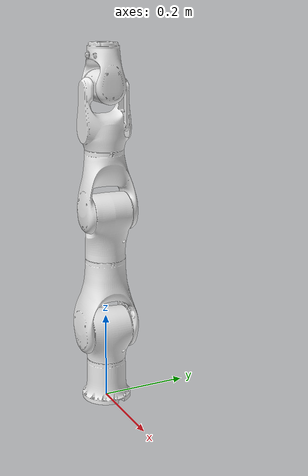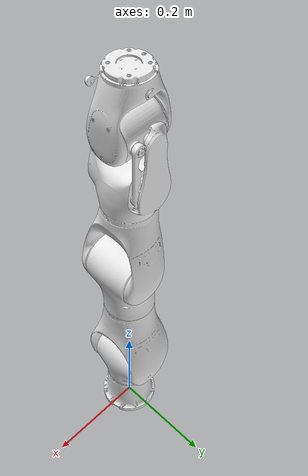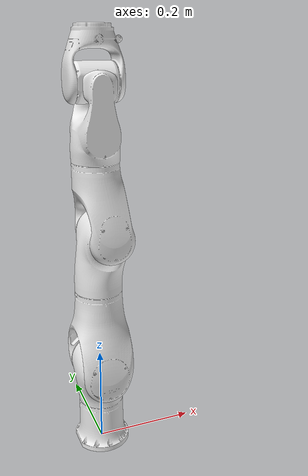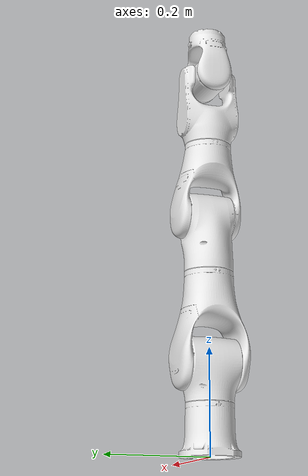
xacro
<?xml version='1.0' encoding='UTF-8'?>
<!-- xMate AR3L collaborative ARC 7-axis (3 kg). Source: 仓三 AR3-3_07L-W4C5C5_description -->
<!-- Joints renamed to joint1..joint7 for ros2_control / MoveIt. -->
<robot xmlns:xacro="http://www.ros.org/wiki/xacro" name="AR3-3_07L-W4C5C5">

  <xacro:include filename="$(find rokae_description)/urdf/materials.xacro"/>

  <!-- Used for fixing robot to Gazebo 'base_link' -->
  <link name="world"/>
  <joint name="fixed" type="fixed">
    <parent link="world"/>
    <child link="AR3-3_07L-W4C5C5_base"/>
  </joint>
  <!--base-->
  <link name="AR3-3_07L-W4C5C5_base">
    <visual>
      <geometry>
        <mesh filename="package://rokae_description/meshes/AR3-3_07L-W4C5C5/visual/AR3-3_07L-W4C5C5_base.stl" scale="0.001 0.001 0.001"/>
      </geometry>
      <origin rpy="0 0 0" xyz="0.0 0.0 0.0"/>
      <material name="white"/>
    </visual>
    <collision>
      <geometry>
        <mesh filename="package://rokae_description/meshes/AR3-3_07L-W4C5C5/collision/AR3-3_07L-W4C5C5_base.stl" scale="0.001 0.001 0.001"/>
      </geometry>
      <origin rpy="0 0 0" xyz="0.0 0.0 0.0"/>
    </collision>
  </link>
  <joint name="joint1" type="revolute">
    <parent link="AR3-3_07L-W4C5C5_base"/>
    <child link="AR3-3_07L-W4C5C5_link1"/>
    <limit effort="66" lower="-3.1067" upper="3.1067" velocity="3.05432619"/>
    <axis xyz="0 0 1"/>
    <origin rpy="0 0 0" xyz="0.0 0.0 0.0"/>
  </joint>
  <transmission name="tran1">
    <type>transmission_interface/SimpleTransmission</type>
    <joint name="joint1">
      <hardwareInterface>EffortJointInterface</hardwareInterface>
    </joint>
    <actuator name="motor1">
      <hardwareInterface>EffortJointInterface</hardwareInterface>
      <mechanicalReduction>1</mechanicalReduction>
    </actuator>
  </transmission>
  <!--link 1-->
  <link name="AR3-3_07L-W4C5C5_link1">
    <visual>
      <geometry>
        <mesh filename="package://rokae_description/meshes/AR3-3_07L-W4C5C5/visual/AR3-3_07L-W4C5C5_link1.stl" scale="0.001 0.001 0.001"/>
      </geometry>
      <origin rpy="0 0 0" xyz="0 0 0"/>
      <material name="white"/>
    </visual>
    <inertial>
      <mass value="1.777000"/>
      <inertia ixx="0.00308384" ixy="-0.00000199" ixz="0.00000297" iyy="0.00259051" iyz="-0.00002823" izz="0.00249381"/>
      <origin rpy="0 0 0" xyz="-0.000174 -0.001385 0.161266"/>
    </inertial>
    <collision>
      <geometry>
        <mesh filename="package://rokae_description/meshes/AR3-3_07L-W4C5C5/collision/AR3-3_07L-W4C5C5_link1.stl" scale="0.001 0.001 0.001"/>
      </geometry>
      <origin rpy="0 0 0" xyz="0 0 0"/>
    </collision>
  </link>
  <joint name="joint2" type="revolute">
    <parent link="AR3-3_07L-W4C5C5_link1"/>
    <child link="AR3-3_07L-W4C5C5_link2"/>
    <limit effort="66" lower="-2.0944" upper="2.0944" velocity="3.05432619"/>
    <axis xyz="0 1 0"/>
    <origin rpy="0 0 0" xyz="0.0 0.0 0.17"/>
  </joint>
  <transmission name="tran2">
    <type>transmission_interface/SimpleTransmission</type>
    <joint name="joint2">
      <hardwareInterface>EffortJointInterface</hardwareInterface>
    </joint>
    <actuator name="motor2">
      <hardwareInterface>EffortJointInterface</hardwareInterface>
      <mechanicalReduction>1</mechanicalReduction>
    </actuator>
  </transmission>
<!--link 2-->
  <link name="AR3-3_07L-W4C5C5_link2">
    <visual>
      <geometry>
        <mesh filename="package://rokae_description/meshes/AR3-3_07L-W4C5C5/visual/AR3-3_07L-W4C5C5_link2.stl" scale="0.001 0.001 0.001"/>
      </geometry>
      <origin rpy="0 0 0" xyz="0 0 0.0"/>
      <material name="white"/>
    </visual>
    <inertial>
      <mass value="2.154000"/>
      <inertia ixx="0.00840938" ixy="-0.00000483" ixz="0.00000090" iyy="0.00721743" iyz="0.00046270" izz="0.00393417"/>
      <origin rpy="0 0 0" xyz="5.5e-05 -0.001608 0.100675"/>
    </inertial>
    <collision>
      <geometry>
        <mesh filename="package://rokae_description/meshes/AR3-3_07L-W4C5C5/collision/AR3-3_07L-W4C5C5_link2.stl" scale="0.001 0.001 0.001"/>
      </geometry>
      <origin rpy="0 0 0" xyz="0 0 0.0"/>
    </collision>
  </link>
  <joint name="joint3" type="revolute">
    <parent link="AR3-3_07L-W4C5C5_link2"/>
    <child link="AR3-3_07L-W4C5C5_link3"/>
    <limit effort="36" lower="-3.1067" upper="3.1067" velocity="4.71238898"/>
    <axis xyz="0 0 1"/>
    <origin rpy="0 0 0" xyz="0.0 0.0 0.281"/>
  </joint>
  <transmission name="tran3">
    <type>transmission_interface/SimpleTransmission</type>
    <joint name="joint3">
      <hardwareInterface>EffortJointInterface</hardwareInterface>
    </joint>
    <actuator name="motor3">
      <hardwareInterface>EffortJointInterface</hardwareInterface>
      <mechanicalReduction>1</mechanicalReduction>
    </actuator>
  </transmission>
<!--link 3-->
  <link name="AR3-3_07L-W4C5C5_link3">
    <visual>
      <geometry>
        <mesh filename="package://rokae_description/meshes/AR3-3_07L-W4C5C5/visual/AR3-3_07L-W4C5C5_link3.stl" scale="0.001 0.001 0.001"/>
      </geometry>
      <origin rpy="0 0 0" xyz="0 0 0"/>
      <material name="white"/>
    </visual>
    <inertial>
      <mass value="1.532000"/>
      <inertia ixx="0.00337301" ixy="-0.00001165" ixz="0.00028785" iyy="0.00322437" iyz="-0.00005221" izz="0.00192214"/>
      <origin rpy="0 0 0" xyz="0.011846 -0.003842 -0.016119"/>
    </inertial>
    <collision>
      <geometry>
        <mesh filename="package://rokae_description/meshes/AR3-3_07L-W4C5C5/collision/AR3-3_07L-W4C5C5_link3.stl" scale="0.001 0.001 0.001"/>
      </geometry>
      <origin rpy="0 0 0" xyz="0 0 0"/>
    </collision>
  </link>
  <joint name="joint4" type="revolute">
    <parent link="AR3-3_07L-W4C5C5_link3"/>
    <child link="AR3-3_07L-W4C5C5_link4"/>
    <limit effort="36" lower="-1.0472" upper="2.5307" velocity="4.71238898"/>
    <!--     lower="-1.0472" upper="2.5307" -->
    <axis xyz="0 1 0"/>
    <origin rpy="0 0 0" xyz="0.015 0.0 0.0"/>
  </joint>
  <transmission name="tran4">
    <type>transmission_interface/SimpleTransmission</type>
    <joint name="joint4">
      <hardwareInterface>EffortJointInterface</hardwareInterface>
    </joint>
    <actuator name="motor4">
      <hardwareInterface>EffortJointInterface</hardwareInterface>
      <mechanicalReduction>1</mechanicalReduction>
    </actuator>
  </transmission>
<!--link 4-->
  <link name="AR3-3_07L-W4C5C5_link4">
    <visual>
      <geometry>
        <mesh filename="package://rokae_description/meshes/AR3-3_07L-W4C5C5/visual/AR3-3_07L-W4C5C5_link4.stl" scale="0.001 0.001 0.001"/>
      </geometry>
      <origin rpy="0 0 0" xyz="0.0 0.0 0.0"/>
      <material name="white"/>
    </visual>
    <inertial>
      <mass value="1.161000"/>
      <inertia ixx="0.00360136" ixy="-0.00001046" ixz="-0.00021493" iyy="0.00278613" iyz="0.00011939" izz="0.00188352"/>
      <origin rpy="0 0 0" xyz="-0.010709 -0.0008209999999999999 0.080928"/>
    </inertial>
    <collision>
      <geometry>
        <mesh filename="package://rokae_description/meshes/AR3-3_07L-W4C5C5/collision/AR3-3_07L-W4C5C5_link4.stl" scale="0.001 0.001 0.001"/>
      </geometry>
      <origin rpy="0 0 0" xyz="0.0 0.0 0.0"/>
    </collision>
  </link>
  <joint name="joint5" type="revolute">
    <parent link="AR3-3_07L-W4C5C5_link4"/>
    <child link="AR3-3_07L-W4C5C5_link5"/>
    <limit effort="11" lower="-3.1067" upper="3.1067" velocity="4.18879020"/>
    <axis xyz="0 0 1"/>
    <origin rpy="0 0 0" xyz="-0.015 0.0 0.276"/>
  </joint>
  <transmission name="tran5">
    <type>transmission_interface/SimpleTransmission</type>
    <joint name="joint5">
      <hardwareInterface>EffortJointInterface</hardwareInterface>
    </joint>
    <actuator name="motor5">
      <hardwareInterface>EffortJointInterface</hardwareInterface>
      <mechanicalReduction>1</mechanicalReduction>
    </actuator>
  </transmission>
<!--link 5-->
  <link name="AR3-3_07L-W4C5C5_link5">
    <visual>
      <geometry>
        <mesh filename="package://rokae_description/meshes/AR3-3_07L-W4C5C5/visual/AR3-3_07L-W4C5C5_link5.stl" scale="0.001 0.001 0.001"/>
      </geometry>
      <origin rpy="0 0 0" xyz="0 0 0"/>
      <material name="white"/>
    </visual>
    <inertial>
      <mass value="1.098000"/>
      <inertia ixx="0.00221583" ixy="0.00003501" ixz="0.00003798" iyy="0.00187879" iyz="0.00008344" izz="0.00126064"/>
      <origin rpy="0 0 0" xyz="0.000874 0.0062629999999999995 -0.082189"/>
    </inertial>
    <collision>
      <geometry>
        <mesh filename="package://rokae_description/meshes/AR3-3_07L-W4C5C5/collision/AR3-3_07L-W4C5C5_link5.stl" scale="0.001 0.001 0.001"/>
      </geometry>
      <origin rpy="0 0 0" xyz="0 0 0"/>
    </collision>
  </link>
  <joint name="joint6" type="revolute">
    <parent link="AR3-3_07L-W4C5C5_link5"/>
    <child link="AR3-3_07L-W4C5C5_link6"/>
    <limit effort="11" lower="-1.0472" upper="1.0472" velocity="4.18879020"/>
    <axis xyz="0 1 0"/>
    <origin rpy="0.0 0.0 0" xyz="0.0 0.0 0.0"/>
  </joint>
  <transmission name="tran6">
    <type>transmission_interface/SimpleTransmission</type>
    <joint name="joint6">
      <hardwareInterface>EffortJointInterface</hardwareInterface>
    </joint>
    <actuator name="motor6">
      <hardwareInterface>EffortJointInterface</hardwareInterface>
      <mechanicalReduction>1</mechanicalReduction>
    </actuator>
  </transmission>
<!--link 6-->
  <link name="AR3-3_07L-W4C5C5_link6">
    <visual>
      <geometry>
        <mesh filename="package://rokae_description/meshes/AR3-3_07L-W4C5C5/visual/AR3-3_07L-W4C5C5_link6.stl" scale="0.001 0.001 0.001"/>
      </geometry>
      <origin rpy="0 0 0" xyz="0 0 0"/>
      <material name="white"/>
    </visual>
    <inertial>
      <mass value="0.643000"/>
      <inertia ixx="0.00035175" ixy="0.00000325" ixz="-0.00000253" iyy="0.00043737" iyz="-0.00000087" izz="0.00045627"/>
      <origin rpy="0 0 0" xyz="0.006169 0.000703 0.000133"/>
    </inertial>
    <collision>
      <geometry>
        <mesh filename="package://rokae_description/meshes/AR3-3_07L-W4C5C5/collision/AR3-3_07L-W4C5C5_link6.stl" scale="0.001 0.001 0.001"/>
      </geometry>
      <origin rpy="0 0 0" xyz="0 0 0"/>
    </collision>
  </link>
  <joint name="joint7" type="revolute">
    <parent link="AR3-3_07L-W4C5C5_link6"/>
    <child link="AR3-3_07L-W4C5C5_link7"/>
    <limit effort="11" lower="-1.5708" upper="1.5708" velocity="4.18879020"/>
    <axis xyz="1 0 0"/>
    <origin rpy="0.0 0.0 0" xyz="0.0 0.0 0.0"/>
  </joint>
  <transmission name="tran7">
    <type>transmission_interface/SimpleTransmission</type>
    <joint name="joint7">
      <hardwareInterface>EffortJointInterface</hardwareInterface>
    </joint>
    <actuator name="motor7">
      <hardwareInterface>EffortJointInterface</hardwareInterface>
      <mechanicalReduction>1</mechanicalReduction>
    </actuator>
  </transmission>
<!--link 7-->
  <link name="AR3-3_07L-W4C5C5_link7">
    <visual>
      <geometry>
        <mesh filename="package://rokae_description/meshes/AR3-3_07L-W4C5C5/visual/AR3-3_07L-W4C5C5_link7.stl" scale="0.001 0.001 0.001"/>
      </geometry>
      <origin rpy="0 0 0" xyz="0.0 0.0 0.0"/>
      <material name="white"/>
    </visual>
    <inertial>
      <mass value="0.423000"/>
      <inertia ixx="0.00062671" ixy="-0.00000152" ixz="-0.00001805" iyy="0.00094159" iyz="-0.00000332" izz="0.00060022"/>
      <origin rpy="0 0 0" xyz="-0.000216 -0.00027600000000000004 0.048095"/>
    </inertial>
    <collision>
      <geometry>
        <mesh filename="package://rokae_description/meshes/AR3-3_07L-W4C5C5/collision/AR3-3_07L-W4C5C5_link7.stl" scale="0.001 0.001 0.001"/>
      </geometry>
      <origin rpy="0 0 0" xyz="0.0 0.0 0.0"/>
    </collision>
  </link>
  <link name="AR3-3_07L-W4C5C5_tcp">
    <inertial>
      <origin rpy="0 0 0" xyz="0 0 0"/>
      <mass value="0"/>
      <inertia ixx="0" ixy="0" ixz="0" iyy="0" iyz="0" izz="0"/>
    </inertial>
  </link>
  <joint name="AR3-3_07L-W4C5C5_tcp_joint" type="fixed">
    <parent link="AR3-3_07L-W4C5C5_link7"/>
    <child link="AR3-3_07L-W4C5C5_tcp"/>
    <origin rpy="0 0 0" xyz="0.0 0.0 0.093"/>
  </joint>
</robot>
